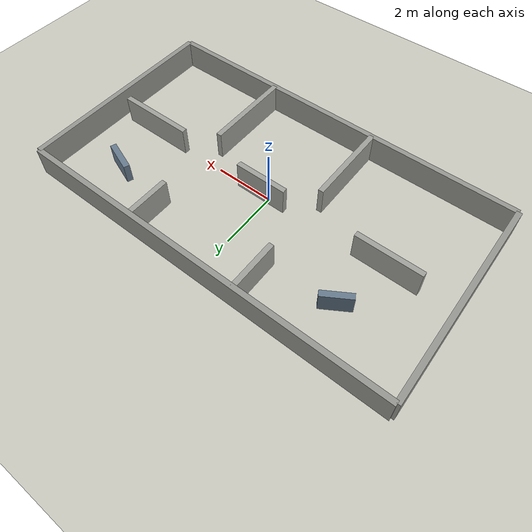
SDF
<?xml version="1.0" ?>
<sdf version="1.9">
  <world name="default">
    <physics name="rl_training_physics" type="ode">
      <max_step_size>0.005</max_step_size>
      <real_time_update_rate>0</real_time_update_rate>
      <real_time_factor>-1</real_time_factor>
    </physics>

    <plugin
      filename="gz-sim-physics-system"
      name="gz::sim::systems::Physics">
    </plugin>
    <plugin
      filename="gz-sim-user-commands-system"
      name="gz::sim::systems::UserCommands">
    </plugin>
    <plugin
      filename="gz-sim-scene-broadcaster-system"
      name="gz::sim::systems::SceneBroadcaster">
    </plugin>
    <plugin
      filename="gz-sim-sensors-system"
      name="gz::sim::systems::Sensors">
      <render_engine>ogre2</render_engine>
    </plugin>
    <plugin
      filename="gz-sim-imu-system"
      name="gz::sim::systems::Imu">
    </plugin>

    <scene>
      <ambient>0.45 0.45 0.45 1</ambient>
      <background>0.72 0.74 0.76 1</background>
    </scene>

    <light name="sun" type="directional">
      <cast_shadows>true</cast_shadows>
      <pose>0 0 10 0 0 0</pose>
      <diffuse>0.82 0.82 0.78 1</diffuse>
      <specular>0.18 0.18 0.18 1</specular>
      <direction>-0.45 0.2 -0.87</direction>
    </light>

    <model name="ground_plane">
      <static>true</static>
      <link name="link">
        <collision name="collision"><geometry><plane><normal>0 0 1</normal><size>16 10</size></plane></geometry></collision>
        <visual name="visual"><geometry><plane><normal>0 0 1</normal><size>16 10</size></plane></geometry><material><ambient>0.78 0.78 0.74 1</ambient><diffuse>0.78 0.78 0.74 1</diffuse></material></visual>
      </link>
    </model>

    <!-- Indoor training geometry. Reset poses (-2.80,0.96), (5.00,0.86),
         and (1.20,-1.60) are free spaces connected by doorway-like gaps. -->
    <model name="training_house_walls">
      <static>true</static>

      <link name="north_wall"><pose>0 3.5 0.5 0 0 0</pose><collision name="collision"><geometry><box><size>13.0 0.18 1.0</size></box></geometry></collision><visual name="visual"><geometry><box><size>13.0 0.18 1.0</size></box></geometry><material><ambient>0.58 0.58 0.56 1</ambient><diffuse>0.58 0.58 0.56 1</diffuse></material></visual></link>
      <link name="south_wall"><pose>0 -3.5 0.5 0 0 0</pose><collision name="collision"><geometry><box><size>13.0 0.18 1.0</size></box></geometry></collision><visual name="visual"><geometry><box><size>13.0 0.18 1.0</size></box></geometry><material><ambient>0.58 0.58 0.56 1</ambient><diffuse>0.58 0.58 0.56 1</diffuse></material></visual></link>
      <link name="west_wall"><pose>-6.5 0 0.5 0 0 0</pose><collision name="collision"><geometry><box><size>0.18 7.0 1.0</size></box></geometry></collision><visual name="visual"><geometry><box><size>0.18 7.0 1.0</size></box></geometry><material><ambient>0.58 0.58 0.56 1</ambient><diffuse>0.58 0.58 0.56 1</diffuse></material></visual></link>
      <link name="east_wall"><pose>6.5 0 0.5 0 0 0</pose><collision name="collision"><geometry><box><size>0.18 7.0 1.0</size></box></geometry></collision><visual name="visual"><geometry><box><size>0.18 7.0 1.0</size></box></geometry><material><ambient>0.58 0.58 0.56 1</ambient><diffuse>0.58 0.58 0.56 1</diffuse></material></visual></link>

      <link name="left_partition_low"><pose>-1.5 -2.05 0.5 0 0 0</pose><collision name="collision"><geometry><box><size>0.18 2.9 1.0</size></box></geometry></collision><visual name="visual"><geometry><box><size>0.18 2.9 1.0</size></box></geometry><material><ambient>0.62 0.62 0.60 1</ambient><diffuse>0.62 0.62 0.60 1</diffuse></material></visual></link>
      <link name="left_partition_high"><pose>-1.5 2.65 0.5 0 0 0</pose><collision name="collision"><geometry><box><size>0.18 1.7 1.0</size></box></geometry></collision><visual name="visual"><geometry><box><size>0.18 1.7 1.0</size></box></geometry><material><ambient>0.62 0.62 0.60 1</ambient><diffuse>0.62 0.62 0.60 1</diffuse></material></visual></link>
      <link name="right_partition_low"><pose>2.45 -2.00 0.5 0 0 0</pose><collision name="collision"><geometry><box><size>0.18 3.0 1.0</size></box></geometry></collision><visual name="visual"><geometry><box><size>0.18 3.0 1.0</size></box></geometry><material><ambient>0.62 0.62 0.60 1</ambient><diffuse>0.62 0.62 0.60 1</diffuse></material></visual></link>
      <link name="right_partition_high"><pose>2.45 2.75 0.5 0 0 0</pose><collision name="collision"><geometry><box><size>0.18 1.5 1.0</size></box></geometry></collision><visual name="visual"><geometry><box><size>0.18 1.5 1.0</size></box></geometry><material><ambient>0.62 0.62 0.60 1</ambient><diffuse>0.62 0.62 0.60 1</diffuse></material></visual></link>

      <link name="center_horizontal_left"><pose>-4.25 0.05 0.5 0 0 0</pose><collision name="collision"><geometry><box><size>2.2 0.18 1.0</size></box></geometry></collision><visual name="visual"><geometry><box><size>2.2 0.18 1.0</size></box></geometry><material><ambient>0.62 0.62 0.60 1</ambient><diffuse>0.62 0.62 0.60 1</diffuse></material></visual></link>
      <link name="center_horizontal_mid"><pose>0.25 0.05 0.5 0 0 0</pose><collision name="collision"><geometry><box><size>1.8 0.18 1.0</size></box></geometry></collision><visual name="visual"><geometry><box><size>1.8 0.18 1.0</size></box></geometry><material><ambient>0.62 0.62 0.60 1</ambient><diffuse>0.62 0.62 0.60 1</diffuse></material></visual></link>
      <link name="center_horizontal_right"><pose>4.75 0.05 0.5 0 0 0</pose><collision name="collision"><geometry><box><size>2.6 0.18 1.0</size></box></geometry></collision><visual name="visual"><geometry><box><size>2.6 0.18 1.0</size></box></geometry><material><ambient>0.62 0.62 0.60 1</ambient><diffuse>0.62 0.62 0.60 1</diffuse></material></visual></link>

      <link name="short_obstacle_left_room"><pose>-3.75 1.85 0.35 0 0 0.55</pose><collision name="collision"><geometry><box><size>1.0 0.20 0.70</size></box></geometry></collision><visual name="visual"><geometry><box><size>1.0 0.20 0.70</size></box></geometry><material><ambient>0.40 0.48 0.55 1</ambient><diffuse>0.40 0.48 0.55 1</diffuse></material></visual></link>
      <link name="short_obstacle_right_room"><pose>4.55 1.95 0.35 0 0 -0.35</pose><collision name="collision"><geometry><box><size>1.1 0.20 0.70</size></box></geometry></collision><visual name="visual"><geometry><box><size>1.1 0.20 0.70</size></box></geometry><material><ambient>0.40 0.48 0.55 1</ambient><diffuse>0.40 0.48 0.55 1</diffuse></material></visual></link>
    </model>
  </world>
</sdf>
